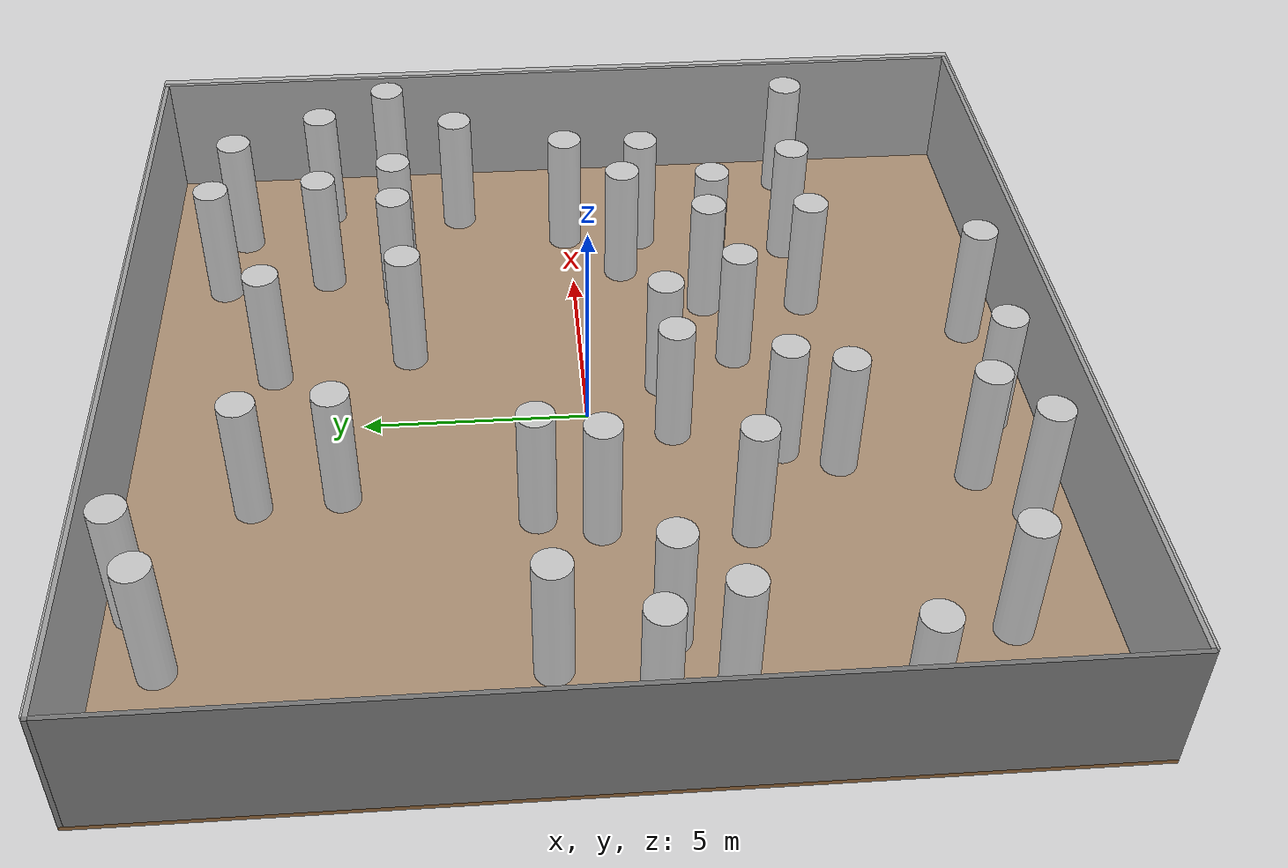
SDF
<?xml version="1.0" ?>
<sdf version="1.5">
  <world name="default">

    <include>
      <uri>model://sun</uri>
    </include>

    <physics name="default_physics" default="0" type="ode">
      <gravity>0 0 -9.8066</gravity>
      <ode>
        <solver>
          <type>quick</type>
          <iters>10</iters>
          <sor>1.3</sor>
          <use_dynamic_moi_rescaling>0</use_dynamic_moi_rescaling>
        </solver>
        <constraints>
          <cfm>0</cfm>
          <erp>0.2</erp>
          <contact_max_correcting_vel>100</contact_max_correcting_vel>
          <contact_surface_layer>0.001</contact_surface_layer>
        </constraints>
      </ode>
      <max_step_size>0.004</max_step_size>
      <real_time_factor>1</real_time_factor>
      <real_time_update_rate>250</real_time_update_rate>
      <magnetic_field>6.0e-6 2.3e-5 -4.2e-5</magnetic_field>
    </physics>

    <model name="box_1">
      <pose>0.04999999999999982 -10.05 1.5  0 0 0</pose>
      <static>true</static>
      <link name="link">
        <collision name="collision">
          <geometry>
            <box>
              <size>20.1 0.09999999999999964 3.0 </size>
            </box>
          </geometry>
        </collision>
        <visual name="visual">
          <geometry>
            <box>
              <size>20.1 0.09999999999999964 3.0 </size>
            </box>
          </geometry>
          <material>
            <script>
              <name>Gazebo/Grey</name>
              <uri>file://media/materials/scripts/gazebo.material</uri>
            </script>
          </material>
        </visual>
      </link>
    </model>

    <model name="box_2">
      <pose>10.05 0.04999999999999982 1.5  0 0 0</pose>
      <static>true</static>
      <link name="link">
        <collision name="collision">
          <geometry>
            <box>
              <size>0.09999999999999964 20.1 3.0 </size>
            </box>
          </geometry>
        </collision>
        <visual name="visual">
          <geometry>
            <box>
              <size>0.09999999999999964 20.1 3.0 </size>
            </box>
          </geometry>
          <material>
            <script>
              <name>Gazebo/Grey</name>
              <uri>file://media/materials/scripts/gazebo.material</uri>
            </script>
          </material>
        </visual>
      </link>
    </model>

    <model name="box_3">
      <pose>-0.04999999999999982 10.05 1.5  0 0 0</pose>
      <static>true</static>
      <link name="link">
        <collision name="collision">
          <geometry>
            <box>
              <size>20.1 0.09999999999999964 3.0 </size>
            </box>
          </geometry>
        </collision>
        <visual name="visual">
          <geometry>
            <box>
              <size>20.1 0.09999999999999964 3.0 </size>
            </box>
          </geometry>
          <material>
            <script>
              <name>Gazebo/Grey</name>
              <uri>file://media/materials/scripts/gazebo.material</uri>
            </script>
          </material>
        </visual>
      </link>
    </model>

    <model name="box_4">
      <pose>-10.05 -0.04999999999999982 1.5  0 0 0</pose>
      <static>true</static>
      <link name="link">
        <collision name="collision">
          <geometry>
            <box>
              <size>0.09999999999999964 20.1 3.0 </size>
            </box>
          </geometry>
        </collision>
        <visual name="visual">
          <geometry>
            <box>
              <size>0.09999999999999964 20.1 3.0 </size>
            </box>
          </geometry>
          <material>
            <script>
              <name>Gazebo/Grey</name>
              <uri>file://media/materials/scripts/gazebo.material</uri>
            </script>
          </material>
        </visual>
      </link>
    </model>

    <model name="box_5">
      <pose>0.0 0.0 -0.05  0 0 0</pose>
      <static>true</static>
      <link name="link">
        <collision name="collision">
          <geometry>
            <box>
              <size>20.2 20.2 0.1 </size>
            </box>
          </geometry>
        </collision>
        <visual name="visual">
          <geometry>
            <box>
              <size>20.2 20.2 0.1 </size>
            </box>
          </geometry>
          <material>
            <script>
              <name>Gazebo/WoodFloor</name>
              <uri>file://media/materials/scripts/gazebo.material</uri>
            </script>
          </material>
        </visual>
      </link>
    </model>

    <model name="box_6">
      <pose>0.0 0.0 3.05  0 0 0</pose>
      <static>true</static>
      <link name="link">
        <collision name="collision">
          <geometry>
            <box>
              <size>20.2 20.2 0.10000000000000009 </size>
            </box>
          </geometry>
        </collision>
        <visual name="visual">
          <geometry>
            <box>
              <size>20.2 20.2 0.10000000000000009 </size>
            </box>
          </geometry>
          <material>
            <script>
              <name>Gazebo/GreyTransparent</name>
              <uri>file://media/materials/scripts/gazebo.material</uri>
            </script>
          </material>
        </visual>
      </link>
    </model>

    <model name="cylinder_1">
      <pose>-6.83894748098 -7.89179945277 1.5  0 0 0</pose>
      <static>true</static>
      <link name="link">
        <visual name="visual">
          <geometry>
            <cylinder>
              <radius>0.4 </radius>
              <length>3.0 </length>
            </cylinder>
          </geometry>
          <material>
            <script>
              <name>Gazebo/White</name>
              <uri>file://media/materials/scripts/gazebo.material</uri>
            </script>
          </material>
        </visual>
      </link>
    </model>

    <model name="cylinder_2">
      <pose>6.0747893158 4.26064558444 1.5  0 0 0</pose>
      <static>true</static>
      <link name="link">
        <visual name="visual">
          <geometry>
            <cylinder>
              <radius>0.4 </radius>
              <length>3.0 </length>
            </cylinder>
          </geometry>
          <material>
            <script>
              <name>Gazebo/White</name>
              <uri>file://media/materials/scripts/gazebo.material</uri>
            </script>
          </material>
        </visual>
      </link>
    </model>

    <model name="cylinder_3">
      <pose>8.23827657845 6.10948991316 1.5  0 0 0</pose>
      <static>true</static>
      <link name="link">
        <visual name="visual">
          <geometry>
            <cylinder>
              <radius>0.4 </radius>
              <length>3.0 </length>
            </cylinder>
          </geometry>
          <material>
            <script>
              <name>Gazebo/White</name>
              <uri>file://media/materials/scripts/gazebo.material</uri>
            </script>
          </material>
        </visual>
      </link>
    </model>

    <model name="cylinder_4">
      <pose>7.17508661281 8.1425342453 1.5  0 0 0</pose>
      <static>true</static>
      <link name="link">
        <visual name="visual">
          <geometry>
            <cylinder>
              <radius>0.4 </radius>
              <length>3.0 </length>
            </cylinder>
          </geometry>
          <material>
            <script>
              <name>Gazebo/White</name>
              <uri>file://media/materials/scripts/gazebo.material</uri>
            </script>
          </material>
        </visual>
      </link>
    </model>

    <model name="cylinder_5">
      <pose>-1.42847098992 -4.137162309 1.5  0 0 0</pose>
      <static>true</static>
      <link name="link">
        <visual name="visual">
          <geometry>
            <cylinder>
              <radius>0.4 </radius>
              <length>3.0 </length>
            </cylinder>
          </geometry>
          <material>
            <script>
              <name>Gazebo/White</name>
              <uri>file://media/materials/scripts/gazebo.material</uri>
            </script>
          </material>
        </visual>
      </link>
    </model>

    <model name="cylinder_6">
      <pose>5.32723679013 -1.19250676753 1.5  0 0 0</pose>
      <static>true</static>
      <link name="link">
        <visual name="visual">
          <geometry>
            <cylinder>
              <radius>0.4 </radius>
              <length>3.0 </length>
            </cylinder>
          </geometry>
          <material>
            <script>
              <name>Gazebo/White</name>
              <uri>file://media/materials/scripts/gazebo.material</uri>
            </script>
          </material>
        </visual>
      </link>
    </model>

    <model name="cylinder_7">
      <pose>3.80077108574 -3.07419006515 1.5  0 0 0</pose>
      <static>true</static>
      <link name="link">
        <visual name="visual">
          <geometry>
            <cylinder>
              <radius>0.4 </radius>
              <length>3.0 </length>
            </cylinder>
          </geometry>
          <material>
            <script>
              <name>Gazebo/White</name>
              <uri>file://media/materials/scripts/gazebo.material</uri>
            </script>
          </material>
        </visual>
      </link>
    </model>

    <model name="cylinder_8">
      <pose>6.63117736508 -1.75021261637 1.5  0 0 0</pose>
      <static>true</static>
      <link name="link">
        <visual name="visual">
          <geometry>
            <cylinder>
              <radius>0.4 </radius>
              <length>3.0 </length>
            </cylinder>
          </geometry>
          <material>
            <script>
              <name>Gazebo/White</name>
              <uri>file://media/materials/scripts/gazebo.material</uri>
            </script>
          </material>
        </visual>
      </link>
    </model>

    <model name="cylinder_9">
      <pose>5.99369686181 -5.36569812106 1.5  0 0 0</pose>
      <static>true</static>
      <link name="link">
        <visual name="visual">
          <geometry>
            <cylinder>
              <radius>0.4 </radius>
              <length>3.0 </length>
            </cylinder>
          </geometry>
          <material>
            <script>
              <name>Gazebo/White</name>
              <uri>file://media/materials/scripts/gazebo.material</uri>
            </script>
          </material>
        </visual>
      </link>
    </model>

    <model name="cylinder_10">
      <pose>5.17546506576 8.50012367931 1.5  0 0 0</pose>
      <static>true</static>
      <link name="link">
        <visual name="visual">
          <geometry>
            <cylinder>
              <radius>0.4 </radius>
              <length>3.0 </length>
            </cylinder>
          </geometry>
          <material>
            <script>
              <name>Gazebo/White</name>
              <uri>file://media/materials/scripts/gazebo.material</uri>
            </script>
          </material>
        </visual>
      </link>
    </model>

    <model name="cylinder_11">
      <pose>-1.91983912702 -5.33276867622 1.5  0 0 0</pose>
      <static>true</static>
      <link name="link">
        <visual name="visual">
          <geometry>
            <cylinder>
              <radius>0.4 </radius>
              <length>3.0 </length>
            </cylinder>
          </geometry>
          <material>
            <script>
              <name>Gazebo/White</name>
              <uri>file://media/materials/scripts/gazebo.material</uri>
            </script>
          </material>
        </visual>
      </link>
    </model>

    <model name="cylinder_12">
      <pose>-0.776714415148 -8.96063990169 1.5  0 0 0</pose>
      <static>true</static>
      <link name="link">
        <visual name="visual">
          <geometry>
            <cylinder>
              <radius>0.4 </radius>
              <length>3.0 </length>
            </cylinder>
          </geometry>
          <material>
            <script>
              <name>Gazebo/White</name>
              <uri>file://media/materials/scripts/gazebo.material</uri>
            </script>
          </material>
        </visual>
      </link>
    </model>

    <model name="cylinder_13">
      <pose>-3.73869432296 -9.11525455162 1.5  0 0 0</pose>
      <static>true</static>
      <link name="link">
        <visual name="visual">
          <geometry>
            <cylinder>
              <radius>0.4 </radius>
              <length>3.0 </length>
            </cylinder>
          </geometry>
          <material>
            <script>
              <name>Gazebo/White</name>
              <uri>file://media/materials/scripts/gazebo.material</uri>
            </script>
          </material>
        </visual>
      </link>
    </model>

    <model name="cylinder_14">
      <pose>9.38010321959 4.46747617669 1.5  0 0 0</pose>
      <static>true</static>
      <link name="link">
        <visual name="visual">
          <geometry>
            <cylinder>
              <radius>0.4 </radius>
              <length>3.0 </length>
            </cylinder>
          </geometry>
          <material>
            <script>
              <name>Gazebo/White</name>
              <uri>file://media/materials/scripts/gazebo.material</uri>
            </script>
          </material>
        </visual>
      </link>
    </model>

    <model name="cylinder_15">
      <pose>2.30240032397 3.9953966405 1.5  0 0 0</pose>
      <static>true</static>
      <link name="link">
        <visual name="visual">
          <geometry>
            <cylinder>
              <radius>0.4 </radius>
              <length>3.0 </length>
            </cylinder>
          </geometry>
          <material>
            <script>
              <name>Gazebo/White</name>
              <uri>file://media/materials/scripts/gazebo.material</uri>
            </script>
          </material>
        </visual>
      </link>
    </model>

    <model name="cylinder_16">
      <pose>-8.9361717017 -5.5735496492 1.5  0 0 0</pose>
      <static>true</static>
      <link name="link">
        <visual name="visual">
          <geometry>
            <cylinder>
              <radius>0.4 </radius>
              <length>3.0 </length>
            </cylinder>
          </geometry>
          <material>
            <script>
              <name>Gazebo/White</name>
              <uri>file://media/materials/scripts/gazebo.material</uri>
            </script>
          </material>
        </visual>
      </link>
    </model>

    <model name="cylinder_17">
      <pose>5.43188227885 6.01696460797 1.5  0 0 0</pose>
      <static>true</static>
      <link name="link">
        <visual name="visual">
          <geometry>
            <cylinder>
              <radius>0.4 </radius>
              <length>3.0 </length>
            </cylinder>
          </geometry>
          <material>
            <script>
              <name>Gazebo/White</name>
              <uri>file://media/materials/scripts/gazebo.material</uri>
            </script>
          </material>
        </visual>
      </link>
    </model>

    <model name="cylinder_18">
      <pose>0.938695087365 -1.77399520842 1.5  0 0 0</pose>
      <static>true</static>
      <link name="link">
        <visual name="visual">
          <geometry>
            <cylinder>
              <radius>0.4 </radius>
              <length>3.0 </length>
            </cylinder>
          </geometry>
          <material>
            <script>
              <name>Gazebo/White</name>
              <uri>file://media/materials/scripts/gazebo.material</uri>
            </script>
          </material>
        </visual>
      </link>
    </model>

    <model name="cylinder_19">
      <pose>3.6844380894 -5.44387147518 1.5  0 0 0</pose>
      <static>true</static>
      <link name="link">
        <visual name="visual">
          <geometry>
            <cylinder>
              <radius>0.4 </radius>
              <length>3.0 </length>
            </cylinder>
          </geometry>
          <material>
            <script>
              <name>Gazebo/White</name>
              <uri>file://media/materials/scripts/gazebo.material</uri>
            </script>
          </material>
        </visual>
      </link>
    </model>

    <model name="cylinder_20">
      <pose>7.83548392729 2.77357956885 1.5  0 0 0</pose>
      <static>true</static>
      <link name="link">
        <visual name="visual">
          <geometry>
            <cylinder>
              <radius>0.4 </radius>
              <length>3.0 </length>
            </cylinder>
          </geometry>
          <material>
            <script>
              <name>Gazebo/White</name>
              <uri>file://media/materials/scripts/gazebo.material</uri>
            </script>
          </material>
        </visual>
      </link>
    </model>

    <model name="cylinder_21">
      <pose>2.35372287733 -9.1000764405 1.5  0 0 0</pose>
      <static>true</static>
      <link name="link">
        <visual name="visual">
          <geometry>
            <cylinder>
              <radius>0.4 </radius>
              <length>3.0 </length>
            </cylinder>
          </geometry>
          <material>
            <script>
              <name>Gazebo/White</name>
              <uri>file://media/materials/scripts/gazebo.material</uri>
            </script>
          </material>
        </visual>
      </link>
    </model>

    <model name="cylinder_22">
      <pose>-6.60460425576 -1.17861944126 1.5  0 0 0</pose>
      <static>true</static>
      <link name="link">
        <visual name="visual">
          <geometry>
            <cylinder>
              <radius>0.4 </radius>
              <length>3.0 </length>
            </cylinder>
          </geometry>
          <material>
            <script>
              <name>Gazebo/White</name>
              <uri>file://media/materials/scripts/gazebo.material</uri>
            </script>
          </material>
        </visual>
      </link>
    </model>

    <model name="cylinder_23">
      <pose>4.60726219285 4.2350275608 1.5  0 0 0</pose>
      <static>true</static>
      <link name="link">
        <visual name="visual">
          <geometry>
            <cylinder>
              <radius>0.4 </radius>
              <length>3.0 </length>
            </cylinder>
          </geometry>
          <material>
            <script>
              <name>Gazebo/White</name>
              <uri>file://media/materials/scripts/gazebo.material</uri>
            </script>
          </material>
        </visual>
      </link>
    </model>

    <model name="cylinder_24">
      <pose>-3.59675382872 -0.0413702019899 1.5  0 0 0</pose>
      <static>true</static>
      <link name="link">
        <visual name="visual">
          <geometry>
            <cylinder>
              <radius>0.4 </radius>
              <length>3.0 </length>
            </cylinder>
          </geometry>
          <material>
            <script>
              <name>Gazebo/White</name>
              <uri>file://media/materials/scripts/gazebo.material</uri>
            </script>
          </material>
        </visual>
      </link>
    </model>

    <model name="cylinder_25">
      <pose>-0.678790704769 -1.83730376487 1.5  0 0 0</pose>
      <static>true</static>
      <link name="link">
        <visual name="visual">
          <geometry>
            <cylinder>
              <radius>0.4 </radius>
              <length>3.0 </length>
            </cylinder>
          </geometry>
          <material>
            <script>
              <name>Gazebo/White</name>
              <uri>file://media/materials/scripts/gazebo.material</uri>
            </script>
          </material>
        </visual>
      </link>
    </model>

    <model name="cylinder_26">
      <pose>1.80908792303 7.0962400958 1.5  0 0 0</pose>
      <static>true</static>
      <link name="link">
        <visual name="visual">
          <geometry>
            <cylinder>
              <radius>0.4 </radius>
              <length>3.0 </length>
            </cylinder>
          </geometry>
          <material>
            <script>
              <name>Gazebo/White</name>
              <uri>file://media/materials/scripts/gazebo.material</uri>
            </script>
          </material>
        </visual>
      </link>
    </model>

    <model name="cylinder_27">
      <pose>-2.43929644109 7.26619465159 1.5  0 0 0</pose>
      <static>true</static>
      <link name="link">
        <visual name="visual">
          <geometry>
            <cylinder>
              <radius>0.4 </radius>
              <length>3.0 </length>
            </cylinder>
          </geometry>
          <material>
            <script>
              <name>Gazebo/White</name>
              <uri>file://media/materials/scripts/gazebo.material</uri>
            </script>
          </material>
        </visual>
      </link>
    </model>

    <model name="cylinder_28">
      <pose>8.92370379245 -5.67339111727 1.5  0 0 0</pose>
      <static>true</static>
      <link name="link">
        <visual name="visual">
          <geometry>
            <cylinder>
              <radius>0.4 </radius>
              <length>3.0 </length>
            </cylinder>
          </geometry>
          <material>
            <script>
              <name>Gazebo/White</name>
              <uri>file://media/materials/scripts/gazebo.material</uri>
            </script>
          </material>
        </visual>
      </link>
    </model>

    <model name="cylinder_29">
      <pose>-7.8648675487 -2.30299865317 1.5  0 0 0</pose>
      <static>true</static>
      <link name="link">
        <visual name="visual">
          <geometry>
            <cylinder>
              <radius>0.4 </radius>
              <length>3.0 </length>
            </cylinder>
          </geometry>
          <material>
            <script>
              <name>Gazebo/White</name>
              <uri>file://media/materials/scripts/gazebo.material</uri>
            </script>
          </material>
        </visual>
      </link>
    </model>

    <model name="cylinder_30">
      <pose>1.83465262527 -3.52871260692 1.5  0 0 0</pose>
      <static>true</static>
      <link name="link">
        <visual name="visual">
          <geometry>
            <cylinder>
              <radius>0.4 </radius>
              <length>3.0 </length>
            </cylinder>
          </geometry>
          <material>
            <script>
              <name>Gazebo/White</name>
              <uri>file://media/materials/scripts/gazebo.material</uri>
            </script>
          </material>
        </visual>
      </link>
    </model>

    <model name="cylinder_31">
      <pose>-2.25944119451 5.39213758648 1.5  0 0 0</pose>
      <static>true</static>
      <link name="link">
        <visual name="visual">
          <geometry>
            <cylinder>
              <radius>0.4 </radius>
              <length>3.0 </length>
            </cylinder>
          </geometry>
          <material>
            <script>
              <name>Gazebo/White</name>
              <uri>file://media/materials/scripts/gazebo.material</uri>
            </script>
          </material>
        </visual>
      </link>
    </model>

    <model name="cylinder_32">
      <pose>-7.21993526932 1.16866493939 1.5  0 0 0</pose>
      <static>true</static>
      <link name="link">
        <visual name="visual">
          <geometry>
            <cylinder>
              <radius>0.4 </radius>
              <length>3.0 </length>
            </cylinder>
          </geometry>
          <material>
            <script>
              <name>Gazebo/White</name>
              <uri>file://media/materials/scripts/gazebo.material</uri>
            </script>
          </material>
        </visual>
      </link>
    </model>

    <model name="cylinder_33">
      <pose>-6.75324961862 8.77266495476 1.5  0 0 0</pose>
      <static>true</static>
      <link name="link">
        <visual name="visual">
          <geometry>
            <cylinder>
              <radius>0.4 </radius>
              <length>3.0 </length>
            </cylinder>
          </geometry>
          <material>
            <script>
              <name>Gazebo/White</name>
              <uri>file://media/materials/scripts/gazebo.material</uri>
            </script>
          </material>
        </visual>
      </link>
    </model>

    <model name="cylinder_34">
      <pose>-5.22768864288 9.41795169767 1.5  0 0 0</pose>
      <static>true</static>
      <link name="link">
        <visual name="visual">
          <geometry>
            <cylinder>
              <radius>0.4 </radius>
              <length>3.0 </length>
            </cylinder>
          </geometry>
          <material>
            <script>
              <name>Gazebo/White</name>
              <uri>file://media/materials/scripts/gazebo.material</uri>
            </script>
          </material>
        </visual>
      </link>
    </model>

    <model name="cylinder_35">
      <pose>-2.55726822146 -8.15823041649 1.5  0 0 0</pose>
      <static>true</static>
      <link name="link">
        <visual name="visual">
          <geometry>
            <cylinder>
              <radius>0.4 </radius>
              <length>3.0 </length>
            </cylinder>
          </geometry>
          <material>
            <script>
              <name>Gazebo/White</name>
              <uri>file://media/materials/scripts/gazebo.material</uri>
            </script>
          </material>
        </visual>
      </link>
    </model>

    <model name="cylinder_36">
      <pose>-3.16845707506 1.28052378266 1.5  0 0 0</pose>
      <static>true</static>
      <link name="link">
        <visual name="visual">
          <geometry>
            <cylinder>
              <radius>0.4 </radius>
              <length>3.0 </length>
            </cylinder>
          </geometry>
          <material>
            <script>
              <name>Gazebo/White</name>
              <uri>file://media/materials/scripts/gazebo.material</uri>
            </script>
          </material>
        </visual>
      </link>
    </model>

    <model name="cylinder_37">
      <pose>5.13237299246 -3.32333179191 1.5  0 0 0</pose>
      <static>true</static>
      <link name="link">
        <visual name="visual">
          <geometry>
            <cylinder>
              <radius>0.4 </radius>
              <length>3.0 </length>
            </cylinder>
          </geometry>
          <material>
            <script>
              <name>Gazebo/White</name>
              <uri>file://media/materials/scripts/gazebo.material</uri>
            </script>
          </material>
        </visual>
      </link>
    </model>

    <model name="cylinder_38">
      <pose>6.78965286862 0.10246155164 1.5  0 0 0</pose>
      <static>true</static>
      <link name="link">
        <visual name="visual">
          <geometry>
            <cylinder>
              <radius>0.4 </radius>
              <length>3.0 </length>
            </cylinder>
          </geometry>
          <material>
            <script>
              <name>Gazebo/White</name>
              <uri>file://media/materials/scripts/gazebo.material</uri>
            </script>
          </material>
        </visual>
      </link>
    </model>

    <model name="cylinder_39">
      <pose>-8.4318119897 -0.752253739126 1.5  0 0 0</pose>
      <static>true</static>
      <link name="link">
        <visual name="visual">
          <geometry>
            <cylinder>
              <radius>0.4 </radius>
              <length>3.0 </length>
            </cylinder>
          </geometry>
          <material>
            <script>
              <name>Gazebo/White</name>
              <uri>file://media/materials/scripts/gazebo.material</uri>
            </script>
          </material>
        </visual>
      </link>
    </model>

    <model name="cylinder_40">
      <pose>-3.88162696561 -3.13278626556 1.5  0 0 0</pose>
      <static>true</static>
      <link name="link">
        <visual name="visual">
          <geometry>
            <cylinder>
              <radius>0.4 </radius>
              <length>3.0 </length>
            </cylinder>
          </geometry>
          <material>
            <script>
              <name>Gazebo/White</name>
              <uri>file://media/materials/scripts/gazebo.material</uri>
            </script>
          </material>
        </visual>
      </link>
    </model>

    <gui fullscreen='0'>
      <camera name='user_camera'>
        <pose frame=''>-0.004203 -9.47354 34.8733 0 1.31564 1.5682</pose>
        <view_controller>orbit</view_controller>
        <projection_type>perspective</projection_type>
      </camera>
    </gui>

  </world>
</sdf>
